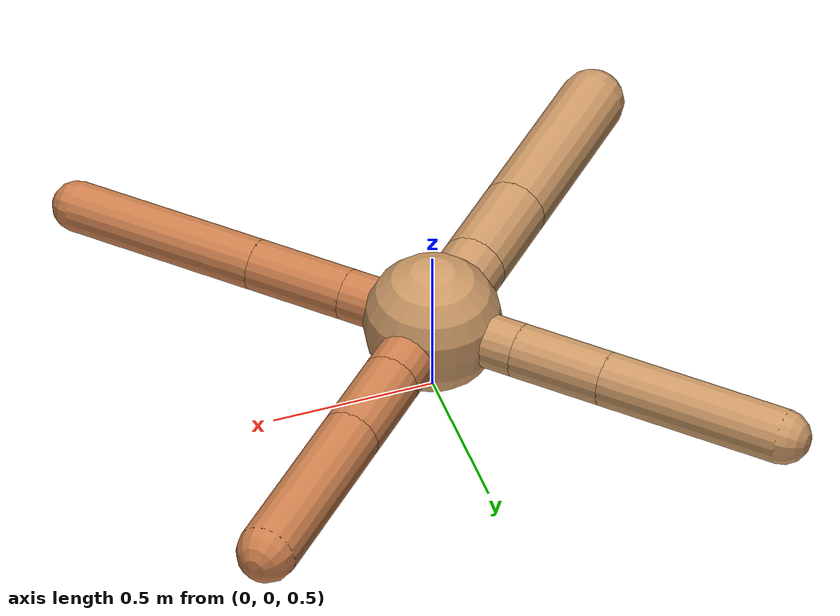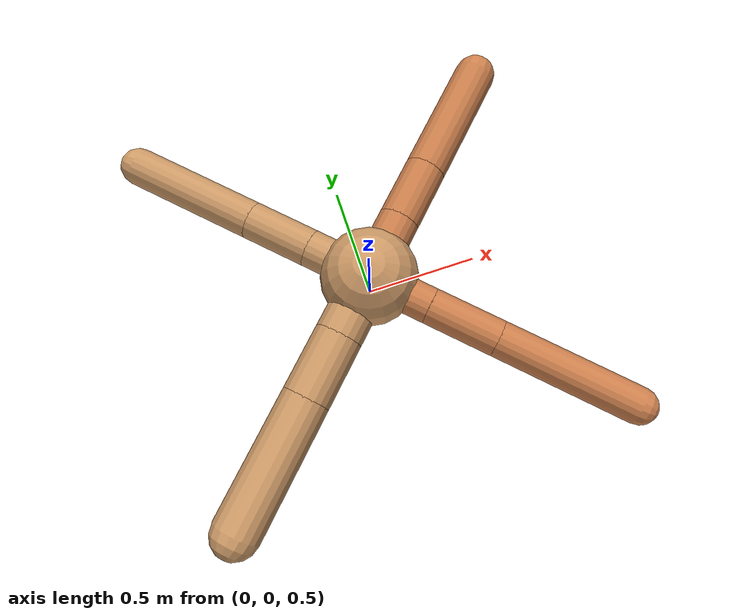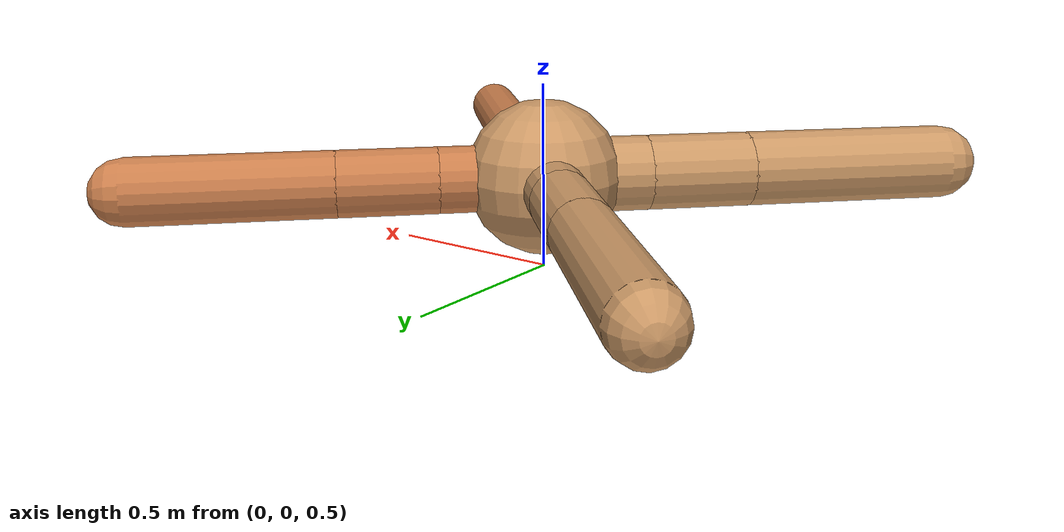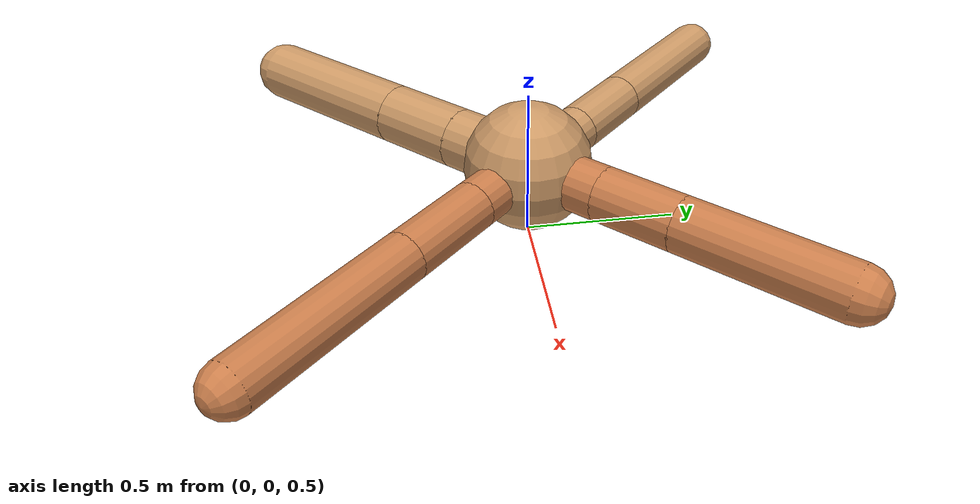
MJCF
<?xml version="1.0" ?>
<mujoco model="ant">

	<compiler angle="degree" coordinate="local" inertiafromgeom="true"/>

	<option integrator="RK4" timestep="0.01"/>

	<custom>

		<numeric data="0.0 0.0 0.55 1.0 0.0 0.0 0.0 0.0 1.0 0.0 -1.0 0.0 -1.0 0.0 1.0" name="init_qpos"/>

	</custom>

	<default>

		<joint armature="1" damping="1" limited="true"/>

		<geom conaffinity="0" condim="3" density="5.0" friction="1.5 0.1 0.1" margin="0.01" rgba="0.8 0.6 0.4 1"/>

	</default>

	<worldbody>

		<body name="torso" pos="0 0 0.75">

			<geom name="torso_geom" pos="0 0 0" size="0.2092525951270113" type="sphere"/>

			<!--joint armature="0" damping="0" limited="false" margin="0.01" name="root" pos="0 0 0" type="free"/-->

			<body name="front_left_leg" pos="0 0 0">

				<geom fromto="0 0 0 0.2 0.2 0" name="aux_1_geom" size="0.0893477143753557" type="capsule" rgba=".8 .5 .3 1"/>

				<body name="aux_1" pos="0.2 0.2 0">

					<joint axis="0 0 1" name="hip_1" pos="0.0 0.0 0.0" range="-40 40" type="hinge"/>

					<geom fromto="0 0 0 0.18654792160545328 0.18654792160545328 0" name="left_leg_geom" size="0.0893477143753557" type="capsule" rgba=".8 .5 .3 1"/>

					<body pos="0.18654792160545328 0.18654792160545328 0" name="front_left_foot">

						<joint axis="-1 1 0" name="ankle_1" pos="0.0 0.0 0.0" range="30 100" type="hinge"/>

						<geom fromto="0 0 0 0.37309584321090655 0.37309584321090655 0" name="left_ankle_geom" size="0.0893477143753557" type="capsule" rgba=".8 .5 .3 1"/>

					</body>

				</body>

			</body>

			<body name="front_right_leg" pos="0 0 0">

				<geom fromto="0 0 0 -0.2 0.2 0" name="aux_2_geom" size="0.08163400025766743" type="capsule"/>

				<body name="aux_2" pos="-0.2 0.2 0">

					<joint axis="0 0 1" name="hip_2" pos="0.0 0.0 0.0" range="-40 40" type="hinge"/>

					<geom fromto="0 0 0 -0.19952293573547153 0.19952293573547153 0" name="right_leg_geom" size="0.08163400025766743" type="capsule"/>

					<body pos="-0.19952293573547153 0.19952293573547153 0" name="front_right_foot">

						<joint axis="1 1 0" name="ankle_2" pos="0.0 0.0 0.0" range="-100 -30" type="hinge"/>

						<geom fromto="0 0 0 -0.39904587147094306 0.39904587147094306 0" name="right_ankle_geom" size="0.08163400025766743" type="capsule"/>

					</body>

				</body>

			</body>

			<body name="left_back_leg" pos="0 0 0">

				<geom fromto="0 0 0 -0.2 -0.2 0" name="aux_3_geom" size="0.10216958063884041" type="capsule"/>

				<body name="aux_3" pos="-0.2 -0.2 0">

					<joint axis="0 0 1" name="hip_3" pos="0.0 0.0 0.0" range="-40 40" type="hinge"/>

					<geom fromto="0 0 0 -0.20106781030656348 -0.20106781030656348 0" name="back_leg_geom" size="0.10216958063884041" type="capsule"/>

					<body pos="-0.20106781030656348 -0.20106781030656348 0" name="left_back_foot">

						<joint axis="-1 1 0" name="ankle_3" pos="0.0 0.0 0.0" range="-100 -30" type="hinge"/>

						<geom fromto="0 0 0 -0.40213562061312697 -0.40213562061312697 0" name="third_ankle_geom" size="0.10216958063884041" type="capsule"/>

					</body>

				</body>

			</body>

			<body name="right_back_leg" pos="0 0 0">

				<geom fromto="0 0 0 0.2 -0.2 0" name="aux_4_geom" size="0.07838482395131229" type="capsule" rgba=".8 .5 .3 1"/>

				<body name="aux_4" pos="0.2 -0.2 0">

					<joint axis="0 0 1" name="hip_4" pos="0.0 0.0 0.0" range="-40 40" type="hinge"/>

					<geom fromto="0 0 0 0.2163273033959018 -0.2163273033959018 0" name="rightback_leg_geom" size="0.07838482395131229" type="capsule" rgba=".8 .5 .3 1"/>

					<body pos="0.2163273033959018 -0.2163273033959018 0" name="right_back_foot">

						<joint axis="1 1 0" name="ankle_4" pos="0.0 0.0 0.0" range="30 100" type="hinge"/>

						<geom fromto="0 0 0 0.4326546067918036 -0.4326546067918036 0" name="fourth_ankle_geom" size="0.07838482395131229" type="capsule" rgba=".8 .5 .3 1"/>

					</body>

				</body>

			</body>

		</body>

	</worldbody>

	<actuator>

		<motor ctrllimited="true" ctrlrange="-1.0 1.0" joint="hip_4" gear="150"/>

		<motor ctrllimited="true" ctrlrange="-1.0 1.0" joint="ankle_4" gear="150"/>

		<motor ctrllimited="true" ctrlrange="-1.0 1.0" joint="hip_1" gear="150"/>

		<motor ctrllimited="true" ctrlrange="-1.0 1.0" joint="ankle_1" gear="150"/>

		<motor ctrllimited="true" ctrlrange="-1.0 1.0" joint="hip_2" gear="150"/>

		<motor ctrllimited="true" ctrlrange="-1.0 1.0" joint="ankle_2" gear="150"/>

		<motor ctrllimited="true" ctrlrange="-1.0 1.0" joint="hip_3" gear="150"/>

		<motor ctrllimited="true" ctrlrange="-1.0 1.0" joint="ankle_3" gear="150"/>

	</actuator>

</mujoco>
